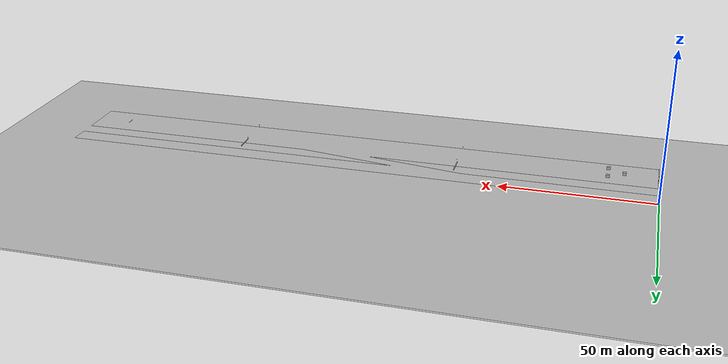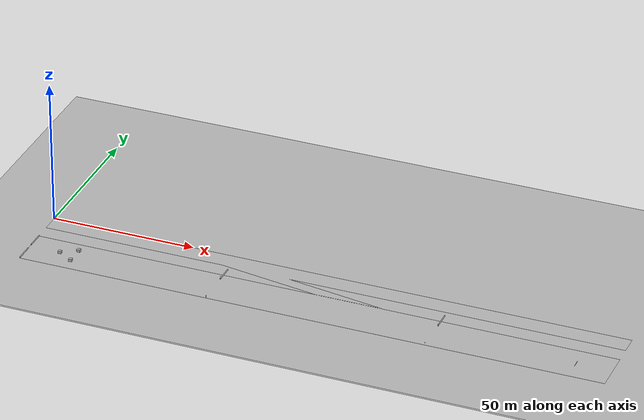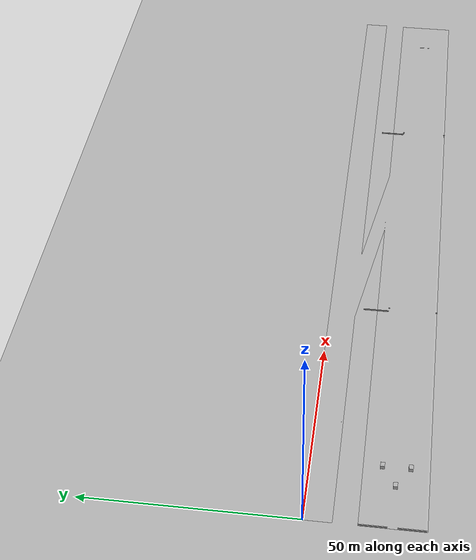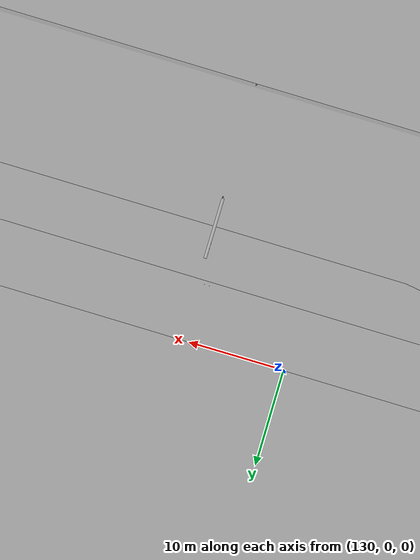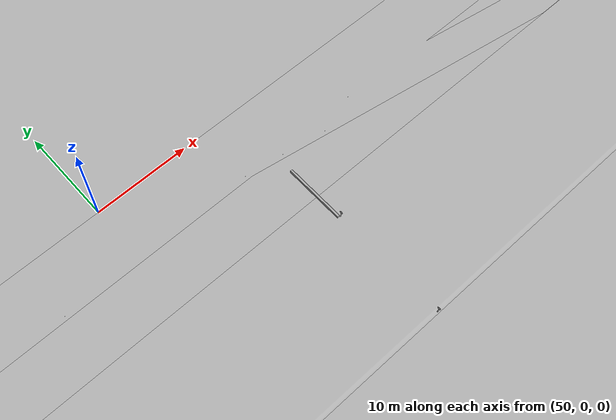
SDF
<sdf version="1.7">
 <world name="parkour_world">
  <light name="sun" type="directional">
   <pose>0 0 10 0 -0 0</pose>
   <diffuse>0.8 0.8 0.8 1</diffuse>
   <specular>0.2 0.2 0.2 1</specular>
   <attenuation>
    <range>1000</range>
    <constant>0.9</constant>
    <linear>0.01</linear>
    <quadratic>0.001</quadratic>
   </attenuation>
   <direction>-0.5 0.1 -0.9</direction>
   <spot><inner_angle>0</inner_angle><outer_angle>0</outer_angle><falloff>0</falloff></spot>
  </light>
  <model name="google_map">
   <static>true</static>
   <pose>00 -54 -0.5 0 0 0.022</pose>
   <link name="link">
    <collision name="collision">
     <geometry><plane><normal>0 0 1</normal><size>250 250</size></plane></geometry>
    </collision>
    <visual name="visual">
     <geometry><plane><normal>0 0 1</normal><size>250 250</size></plane></geometry>
     <material>
      <script>
       <uri>model://google_map/materials/scripts</uri>
       <uri>model://google_map/materials/textures</uri>
       <name>Map/Texture</name>
      </script>
     </material>
    </visual>
   </link>
  </model>
  <model name="yol">
   <static>1</static>
   <link name="link">
    <visual name="visual"><geometry><mesh><uri>model://yol/meshes/yol_mid.dae</uri></mesh></geometry></visual>
    <collision name="collision">
     <pose>100 -20 -0.05 0 -0 0</pose>
     <geometry><box><size>200 200 0.1</size></box></geometry>
     <surface><friction><ode><mu>100</mu><mu2>50</mu2></ode></friction></surface>
    </collision>
   </link>
  </model>
  <model name="tam_yol_arkaplan">
   <static>1</static>
   <link name="link">
    <visual name="visual">
     <geometry><mesh><uri>model://tam_yol_arkaplan/meshes/tam_yol_arkaplan.dae</uri></mesh></geometry>
    </visual>
    <collision name="collision">
     <pose>-33.400000 -1.000000 -14.800000 0 -0 0</pose>
     <geometry><box><size>200 200 0.1</size></box></geometry>
     <surface><friction><ode><mu>100</mu><mu2>50</mu2></ode></friction></surface>
    </collision>
   </link>
   <pose>-33.400000 -1.000000 -14.800000 0 -0 0</pose>
  </model>
  <model name="sari_cizgi_son">
   <static>1</static>
   <link name="link">
    <visual name="visual">
     <geometry><mesh><uri>model://sari_cizgi/meshes/sari_cizgi.obj</uri></mesh></geometry>
    </visual>
    <collision name="collision"><geometry><box><size>1 1 0.01</size></box></geometry></collision>
   </link>
   <pose>188.691 -19.4629 0 0 -0 0</pose>
  </model>
  <model name="sari_duba_1">
   <static>0</static>
   <link name="link">
    <inertial>
     <mass>10</mass>
     <inertia><ixx>1</ixx><ixy>0</ixy><ixz>0</ixz><iyy>1</iyy><iyz>0</iyz><izz>1</izz></inertia>
    </inertial>
    <visual name="visual">
     <geometry><mesh><uri>model://sari_duba/meshes/sari_duba.obj</uri></mesh></geometry>
    </visual>
    <collision name="collision">
     <pose>0 3.14 0.15 0 -0 0</pose>
     <geometry><box><size>0.305265 6.29114 0.305265</size></box></geometry>
    </collision>
   </link>
   <pose>0.15264 -15.1039 0.002632 0 -0 0</pose>
  </model>
  <model name="sari_duba_2">
   <static>0</static>
   <link name="link">
    <inertial>
     <mass>10</mass>
     <inertia><ixx>1</ixx><ixy>0</ixy><ixz>0</ixz><iyy>1</iyy><iyz>0</iyz><izz>1</izz></inertia>
    </inertial>
    <visual name="visual">
     <geometry><mesh><uri>model://sari_duba/meshes/sari_duba.obj</uri></mesh></geometry>
    </visual>
    <collision name="collision">
     <pose>0 3.14 0.15 0 -0 0</pose>
     <geometry><box><size>0.305265 6.29114 0.305265</size></box></geometry>
    </collision>
   </link>
   <pose>0.15264 -23.6757 0.002632 0 -0 0</pose>
  </model>
  <model name="sari_duba_3">
   <static>0</static>
   <link name="link">
    <inertial>
     <mass>10</mass>
     <inertia><ixx>1</ixx><ixy>0</ixy><ixz>0</ixz><iyy>1</iyy><iyz>0</iyz><izz>1</izz></inertia>
    </inertial>
    <visual name="visual">
     <geometry><mesh><uri>model://sari_duba/meshes/sari_duba.obj</uri></mesh></geometry>
    </visual>
    <collision name="collision">
     <pose>0 3.14 0.15 0 -0 0</pose>
     <geometry><box><size>0.305265 6.29114 0.305265</size></box></geometry>
    </collision>
   </link>
   <pose>65.8375 -11.6424 0.002632 0 -0 0</pose>
  </model>
  <model name="sari_duba_4">
   <static>0</static>
   <link name="link">
    <inertial>
     <mass>10</mass>
     <inertia><ixx>1</ixx><ixy>0</ixy><ixz>0</ixz><iyy>1</iyy><iyz>0</iyz><izz>1</izz></inertia>
    </inertial>
    <visual name="visual">
     <geometry><mesh><uri>model://sari_duba/meshes/sari_duba.obj</uri></mesh></geometry>
    </visual>
    <collision name="collision">
     <pose>0 3.14 0.15 0 -0 0</pose>
     <geometry><box><size>0.305265 6.29114 0.305265</size></box></geometry>
    </collision>
   </link>
   <pose>140.871 -11.7465 0.002632 0 -0 0</pose>
  </model>
  <model name="gri_kutu_1">
   <static>0</static>
   <link name="link">
    <inertial>
     <pose>0 0 0.5 0 -0 0</pose>
     <mass>50</mass>
     <inertia><ixx>8.33</ixx><ixy>0</ixy><ixz>0</ixz><iyy>10.16</iyy><iyz>0</iyz><izz>10.16</izz></inertia>
    </inertial>
    <visual name="visual">
     <geometry><mesh><uri>model://gri_engel/meshes/gri_engel.obj</uri></mesh></geometry>
    </visual>
    <collision name="collision">
     <pose>0 0 0.5 0 -0 0</pose>
     <geometry><box><size>1.2 1 1</size></box></geometry>
     <surface><friction><ode><mu>100</mu><mu2>100</mu2></ode></friction></surface>
    </collision>
   </link>
   <pose>11.0855 -19.4376 0.004996 -7e-06 -0 -0</pose>
  </model>
  <model name="gri_kutu_2">
   <static>0</static>
   <link name="link">
    <inertial>
     <pose>0 0 0.5 0 -0 0</pose>
     <mass>50</mass>
     <inertia><ixx>8.33</ixx><ixy>0</ixy><ixz>0</ixz><iyy>10.16</iyy><iyz>0</iyz><izz>10.16</izz></inertia>
    </inertial>
    <visual name="visual">
     <geometry><mesh><uri>model://gri_engel/meshes/gri_engel.obj</uri></mesh></geometry>
    </visual>
    <collision name="collision">
     <pose>0 0 0.5 0 -0 0</pose>
     <geometry><box><size>1.2 1 1</size></box></geometry>
     <surface><friction><ode><mu>100</mu><mu2>100</mu2></ode></friction></surface>
    </collision>
   </link>
   <pose>16.3251 -16.2803 0.004996 -7e-06 -0 -0</pose>
  </model>
  <model name="gri_kutu_3">
   <static>0</static>
   <link name="link">
    <inertial>
     <pose>0 0 0.5 0 -0 0</pose>
     <mass>50</mass>
     <inertia><ixx>8.33</ixx><ixy>0</ixy><ixz>0</ixz><iyy>10.16</iyy><iyz>0</iyz><izz>10.16</izz></inertia>
    </inertial>
    <visual name="visual">
     <geometry><mesh><uri>model://gri_engel/meshes/gri_engel.obj</uri></mesh></geometry>
    </visual>
    <collision name="collision">
     <pose>0 0 0.5 0 -0 0</pose>
     <geometry><box><size>1.2 1 1</size></box></geometry>
     <surface><friction><ode><mu>100</mu><mu2>100</mu2></ode></friction></surface>
    </collision>
   </link>
   <pose>16.3251 -22.6438 0.004996 -7e-06 -0 -0</pose>
  </model>
  <model name="levha_1">
   <static>0</static>
   <link name="link">
    <inertial>
     <mass>1</mass>
     <inertia><ixx>0.05</ixx><ixy>0</ixy><ixz>0</ixz><iyy>0.05</iyy><iyz>0</iyz><izz>0.05</izz></inertia>
    </inertial>
    <visual name="visual">
     <pose>0 0 -0.425 0 -0 0</pose>
     <geometry><mesh><uri>model://dur_levhasi/meshes/dur_levhasi.obj</uri></mesh></geometry>
    </visual>
    <collision name="collision">
     <geometry><box><size>0.180564 0.316564 0.849001</size></box></geometry>
    </collision>
   </link>
   <pose>65.9408 -26.8142 0.424501 2e-06 -3e-06 -6.4e-05</pose>
  </model>
  <model name="levha_2">
   <static>0</static>
   <link name="link">
    <inertial>
     <mass>1</mass>
     <inertia><ixx>0.05</ixx><ixy>0</ixy><ixz>0</ixz><iyy>0.05</iyy><iyz>0</iyz><izz>0.05</izz></inertia>
    </inertial>
    <visual name="visual">
     <geometry><mesh><uri>model://dur_levhasi/meshes/dur_levhasi.obj</uri></mesh></geometry>
    </visual>
    <collision name="collision">
     <geometry><box><size>0.180564 0.316564 0.849001</size></box></geometry>
    </collision>
   </link>
   <pose>65.8653 -14.9474 0.427165 -0.017121 -0.000168 -0.013365</pose>
  </model>
  <model name="levha_3">
   <static>0</static>
   <link name="link">
    <inertial>
     <mass>1</mass>
     <inertia><ixx>0.05</ixx><ixy>0</ixy><ixz>0</ixz><iyy>0.05</iyy><iyz>0</iyz><izz>0.05</izz></inertia>
    </inertial>
    <visual name="visual">
     <pose>0 0 -0.425 0 -0 0</pose>
     <geometry><mesh><uri>model://dur_levhasi/meshes/dur_levhasi.obj</uri></mesh></geometry>
    </visual>
    <collision name="collision">
     <geometry><box><size>0.180564 0.316564 0.849001</size></box></geometry>
    </collision>
   </link>
   <pose>140.937 -26.8554 0.424501 -2e-06 4e-06 0.017838</pose>
  </model>
  <model name="levha_4">
   <static>0</static>
   <link name="link">
    <inertial>
     <mass>1</mass>
     <inertia><ixx>0.05</ixx><ixy>0</ixy><ixz>0</ixz><iyy>0.05</iyy><iyz>0</iyz><izz>0.05</izz></inertia>
    </inertial>
    <visual name="visual">
     <pose>0 0 -0.425 0 -0 0</pose>
     <geometry><mesh><uri>model://dur_levhasi/meshes/dur_levhasi.obj</uri></mesh></geometry>
    </visual>
    <collision name="collision">
     <geometry><box><size>0.180564 0.316564 0.849001</size></box></geometry>
    </collision>
   </link>
   <pose>140.906 -15.0108 0.42721 -0.017516 -3e-05 -0.006758</pose>
  </model>
  <gravity>0 0 -9.8</gravity>
  <magnetic_field>6e-06 2.3e-05 -4.2e-05</magnetic_field>
  <atmosphere type="adiabatic"/>
  <physics type="ode">
   <max_step_size>0.001</max_step_size>
   <real_time_factor>1</real_time_factor>
   <real_time_update_rate>1000</real_time_update_rate>
  </physics>
  <scene><ambient>0.4 0.4 0.4 1</ambient><background>0.7 0.7 0.7 1</background><shadows>1</shadows></scene>
  <audio><device>default</device></audio>
  <spherical_coordinates>
   <surface_model>EARTH_WGS84</surface_model>
   <latitude_deg>0</latitude_deg>
   <longitude_deg>0</longitude_deg>
   <elevation>0</elevation>
   <heading_deg>0</heading_deg>
  </spherical_coordinates>
 </world>
</sdf>
